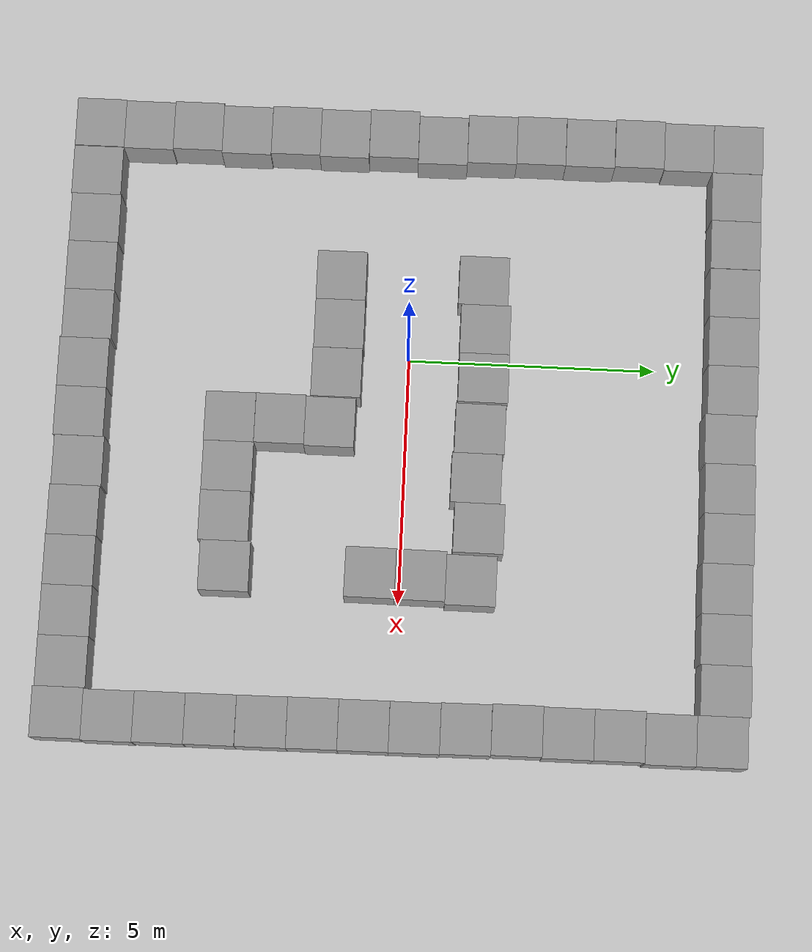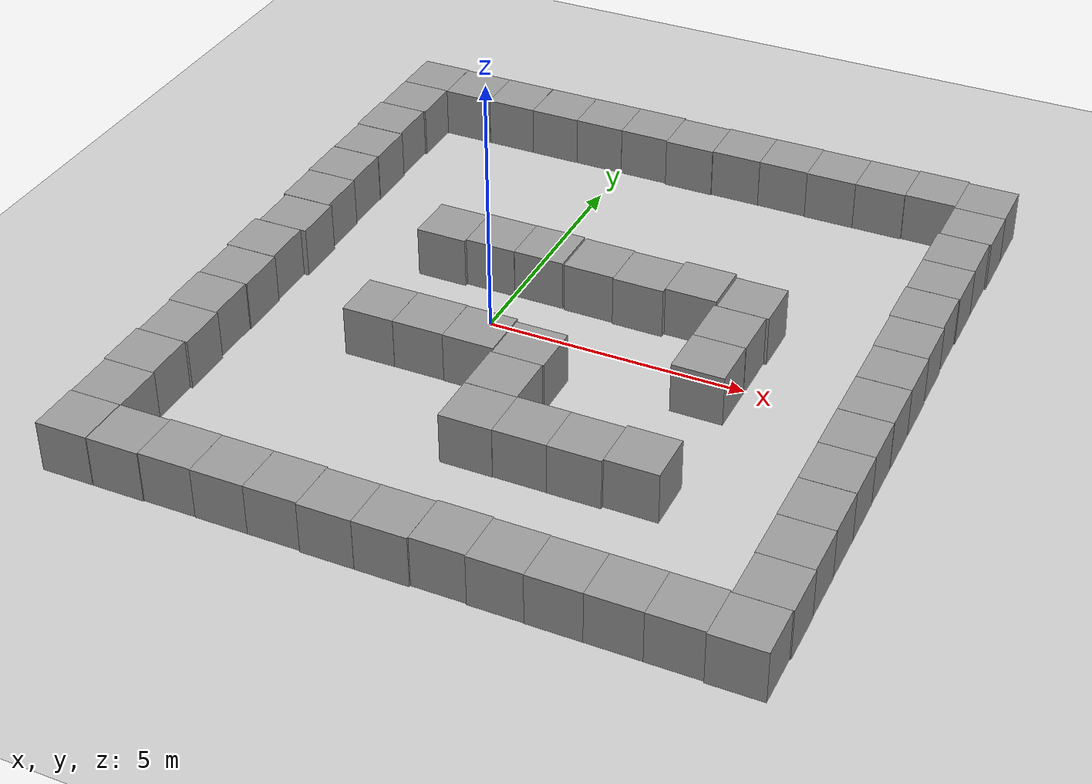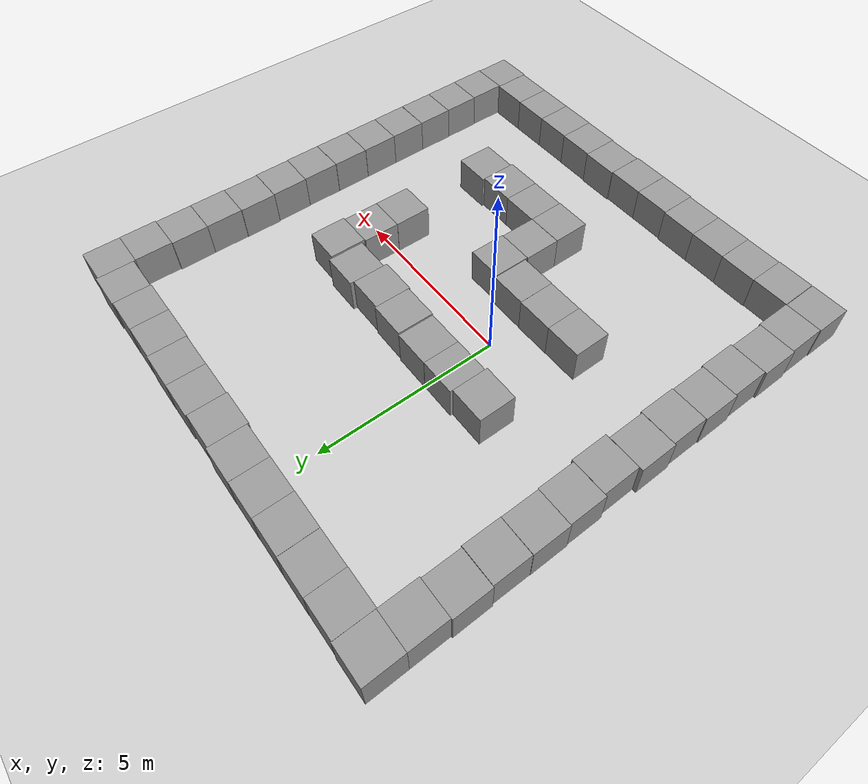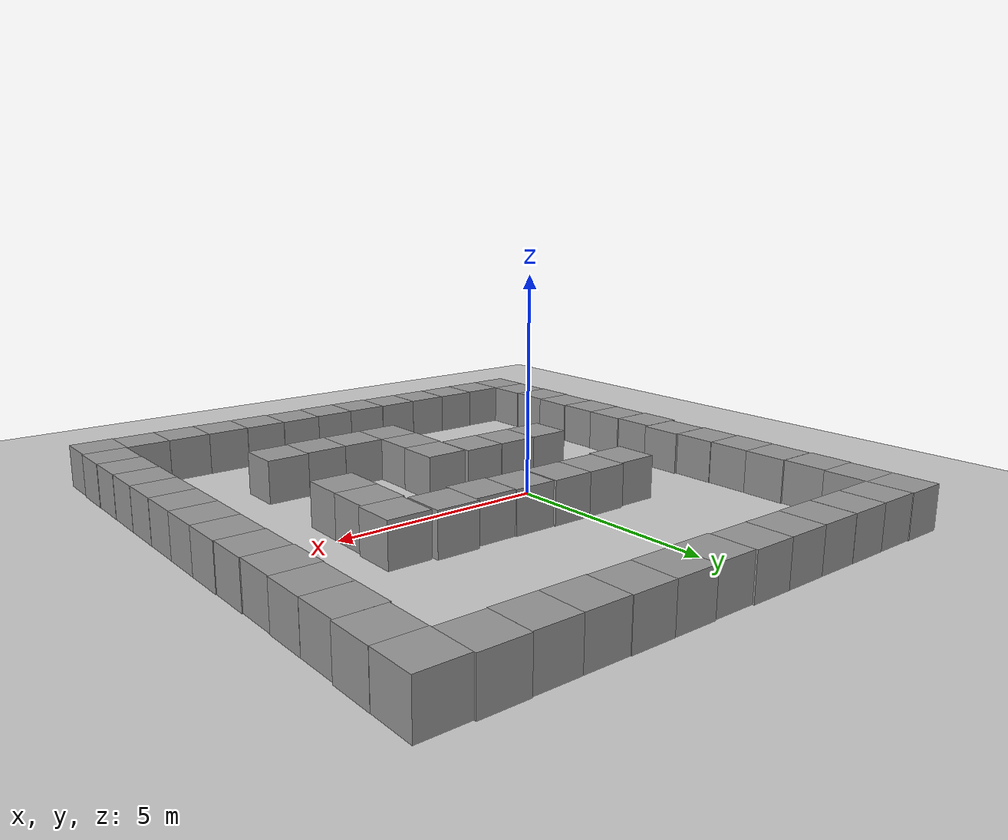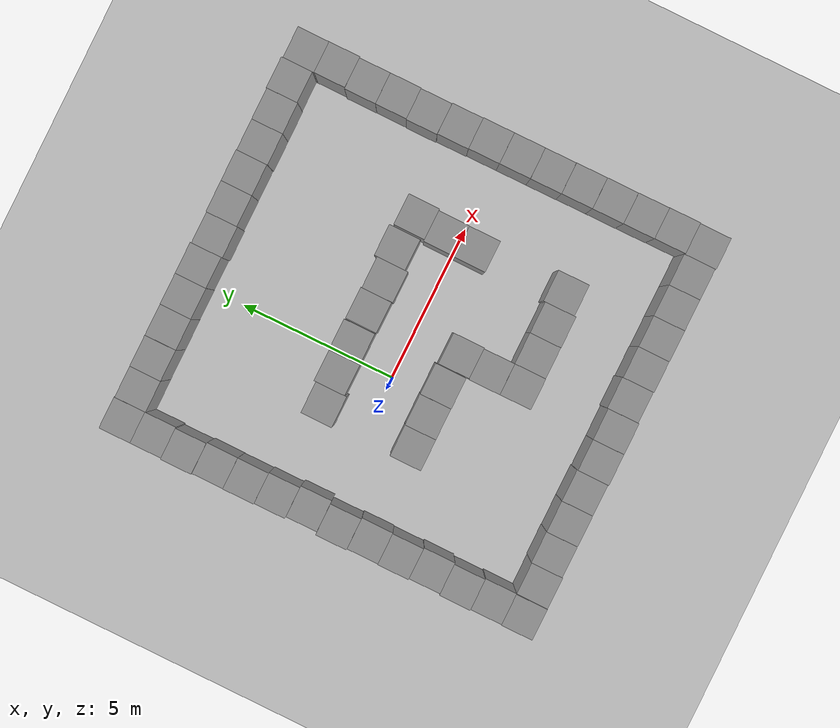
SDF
<sdf version="1.4">
 <world name="default">
  <light name="sun" type="directional">
   <pose>0 0 10 0 -0 0</pose>
   <diffuse>0.8 0.8 0.8 1</diffuse>
   <specular>0.2 0.2 0.2 1</specular>
   <attenuation>
    <range>1000</range>
    <constant>0.9</constant>
    <linear>0.01</linear>
    <quadratic>0.001</quadratic>
   </attenuation>
   <direction>-0.5 0.1 -0.9</direction>
  </light>
  <model name="ground_plane">
   <static>1</static>
   <link name="link">
    <collision name="collision">
     <geometry><plane><normal>0 0 1</normal><size>100 100</size></plane></geometry>
     <surface><friction><ode><mu>100</mu><mu2>50</mu2></ode></friction></surface>
    </collision>
    <visual name="visual">
     <cast_shadows>0</cast_shadows>
     <geometry><plane><normal>0 0 1</normal><size>100 100</size></plane></geometry>
     <material>
      <script><uri>file://media/materials/scripts/gazebo.material</uri><name>Gazebo/Grey</name></script>
     </material>
    </visual>
    <velocity_decay><linear>0</linear><angular>0</angular></velocity_decay>
   </link>
  </model>
  <physics type="ode">
   <max_step_size>0.001</max_step_size>
   <real_time_factor>1</real_time_factor>
   <real_time_update_rate>1000</real_time_update_rate>
   <gravity>0 0 -9.8</gravity>
  </physics>
  <scene><ambient>0.4 0.4 0.4 1</ambient><background>0.7 0.7 0.7 1</background><shadows>1</shadows></scene>
  <spherical_coordinates>
   <surface_model>EARTH_WGS84</surface_model>
   <latitude_deg>0</latitude_deg>
   <longitude_deg>0</longitude_deg>
   <elevation>0</elevation>
   <heading_deg>0</heading_deg>
  </spherical_coordinates>
  <model name="unit_box_1">
   <pose>-1.49547 -1.42861 0.5 0 -0 0.002879</pose>
   <link name="link">
    <inertial>
     <mass>1</mass>
     <inertia><ixx>1</ixx><ixy>0</ixy><ixz>0</ixz><iyy>1</iyy><iyz>0</iyz><izz>1</izz></inertia>
    </inertial>
    <collision name="collision"><geometry><box><size>1 1 1</size></box></geometry></collision>
    <visual name="visual">
     <geometry><box><size>1 1 1</size></box></geometry>
     <material>
      <script><uri>file://media/materials/scripts/gazebo.material</uri><name>Gazebo/Grey</name></script>
     </material>
    </visual>
    <velocity_decay><linear>0</linear><angular>0</angular></velocity_decay>
   </link>
   <static>0</static>
  </model>
  <model name="unit_box_2">
   <pose>4.50384 -3.45155 0.5 0 -0 0.000927</pose>
   <link name="link">
    <inertial>
     <mass>1</mass>
     <inertia><ixx>1</ixx><ixy>0</ixy><ixz>0</ixz><iyy>1</iyy><iyz>0</iyz><izz>1</izz></inertia>
    </inertial>
    <collision name="collision"><geometry><box><size>1 1 1</size></box></geometry></collision>
    <visual name="visual">
     <geometry><box><size>1 1 1</size></box></geometry>
     <material>
      <script><uri>file://media/materials/scripts/gazebo.material</uri><name>Gazebo/Grey</name></script>
     </material>
    </visual>
    <velocity_decay><linear>0</linear><angular>0</angular></velocity_decay>
   </link>
   <static>0</static>
  </model>
  <model name="unit_box_8">
   <pose>4.50905 -0.569607 0.5 0 0 -0.005112</pose>
   <link name="link">
    <inertial>
     <mass>1</mass>
     <inertia><ixx>1</ixx><ixy>0</ixy><ixz>0</ixz><iyy>1</iyy><iyz>0</iyz><izz>1</izz></inertia>
    </inertial>
    <collision name="collision"><geometry><box><size>1 1 1</size></box></geometry></collision>
    <visual name="visual">
     <geometry><box><size>1 1 1</size></box></geometry>
     <material>
      <script><uri>file://media/materials/scripts/gazebo.material</uri><name>Gazebo/Grey</name></script>
     </material>
    </visual>
    <velocity_decay><linear>0</linear><angular>0</angular></velocity_decay>
   </link>
   <static>0</static>
  </model>
  <model name="unit_box_9">
   <pose>0.505532 -1.43142 0.5 0 -0 0.001026</pose>
   <link name="link">
    <inertial>
     <mass>1</mass>
     <inertia><ixx>1</ixx><ixy>0</ixy><ixz>0</ixz><iyy>1</iyy><iyz>0</iyz><izz>1</izz></inertia>
    </inertial>
    <collision name="collision"><geometry><box><size>1 1 1</size></box></geometry></collision>
    <visual name="visual">
     <geometry><box><size>1 1 1</size></box></geometry>
     <material>
      <script><uri>file://media/materials/scripts/gazebo.material</uri><name>Gazebo/Grey</name></script>
     </material>
    </visual>
    <velocity_decay><linear>0</linear><angular>0</angular></velocity_decay>
   </link>
   <static>0</static>
  </model>
  <model name="unit_box_10">
   <pose>1.52602 -1.51466 0.5 0 -0 -0.002217</pose>
   <link name="link">
    <inertial>
     <mass>1</mass>
     <inertia><ixx>1</ixx><ixy>0</ixy><ixz>0</ixz><iyy>1</iyy><iyz>0</iyz><izz>1</izz></inertia>
    </inertial>
    <collision name="collision"><geometry><box><size>1 1 1</size></box></geometry></collision>
    <visual name="visual">
     <geometry><box><size>1 1 1</size></box></geometry>
     <material>
      <script><uri>file://media/materials/scripts/gazebo.material</uri><name>Gazebo/Grey</name></script>
     </material>
    </visual>
    <velocity_decay><linear>0</linear><angular>0</angular></velocity_decay>
   </link>
   <static>0</static>
  </model>
  <model name="unit_box_11">
   <pose>1.50027 -2.51465 0.5 0 -0 -0.002186</pose>
   <link name="link">
    <inertial>
     <mass>1</mass>
     <inertia><ixx>1</ixx><ixy>0</ixy><ixz>0</ixz><iyy>1</iyy><iyz>0</iyz><izz>1</izz></inertia>
    </inertial>
    <collision name="collision"><geometry><box><size>1 1 1</size></box></geometry></collision>
    <visual name="visual">
     <geometry><box><size>1 1 1</size></box></geometry>
     <material>
      <script><uri>file://media/materials/scripts/gazebo.material</uri><name>Gazebo/Grey</name></script>
     </material>
    </visual>
    <velocity_decay><linear>0</linear><angular>0</angular></velocity_decay>
   </link>
   <static>0</static>
  </model>
  <model name="unit_box_13">
   <pose>1.50345 -3.51592 0.5 0 -0 0.000332</pose>
   <link name="link">
    <inertial>
     <mass>1</mass>
     <inertia><ixx>1</ixx><ixy>0</ixy><ixz>0</ixz><iyy>1</iyy><iyz>0</iyz><izz>1</izz></inertia>
    </inertial>
    <collision name="collision"><geometry><box><size>1 1 1</size></box></geometry></collision>
    <visual name="visual">
     <geometry><box><size>1 1 1</size></box></geometry>
     <material>
      <script><uri>file://media/materials/scripts/gazebo.material</uri><name>Gazebo/Grey</name></script>
     </material>
    </visual>
    <velocity_decay><linear>0</linear><angular>0</angular></velocity_decay>
   </link>
   <static>0</static>
  </model>
  <model name="unit_box_14">
   <pose>1.52884 -6.51675 0.5 0 -0 -0.001245</pose>
   <link name="link">
    <inertial>
     <mass>1</mass>
     <inertia><ixx>1</ixx><ixy>0</ixy><ixz>0</ixz><iyy>1</iyy><iyz>0</iyz><izz>1</izz></inertia>
    </inertial>
    <collision name="collision"><geometry><box><size>1 1 1</size></box></geometry></collision>
    <visual name="visual">
     <geometry><box><size>1 1 1</size></box></geometry>
     <material>
      <script><uri>file://media/materials/scripts/gazebo.material</uri><name>Gazebo/Grey</name></script>
     </material>
    </visual>
    <velocity_decay><linear>0</linear><angular>0</angular></velocity_decay>
   </link>
   <static>0</static>
  </model>
  <model name="unit_box_15">
   <pose>0.52875 -6.51658 0.5 -0 -0 -0.001416</pose>
   <link name="link">
    <inertial>
     <mass>1</mass>
     <inertia><ixx>1</ixx><ixy>0</ixy><ixz>0</ixz><iyy>1</iyy><iyz>0</iyz><izz>1</izz></inertia>
    </inertial>
    <collision name="collision"><geometry><box><size>1 1 1</size></box></geometry></collision>
    <visual name="visual">
     <geometry><box><size>1 1 1</size></box></geometry>
     <material>
      <script><uri>file://media/materials/scripts/gazebo.material</uri><name>Gazebo/Grey</name></script>
     </material>
    </visual>
    <velocity_decay><linear>0</linear><angular>0</angular></velocity_decay>
   </link>
   <static>0</static>
  </model>
  <model name="unit_box_20">
   <pose>-1.50822 1.44739 0.5 0 0 -0.001923</pose>
   <link name="link">
    <inertial>
     <mass>1</mass>
     <inertia><ixx>1</ixx><ixy>0</ixy><ixz>0</ixz><iyy>1</iyy><iyz>0</iyz><izz>1</izz></inertia>
    </inertial>
    <collision name="collision"><geometry><box><size>1 1 1</size></box></geometry></collision>
    <visual name="visual">
     <geometry><box><size>1 1 1</size></box></geometry>
     <material>
      <script><uri>file://media/materials/scripts/gazebo.material</uri><name>Gazebo/Grey</name></script>
     </material>
    </visual>
    <velocity_decay><linear>0</linear><angular>0</angular></velocity_decay>
   </link>
   <static>0</static>
  </model>
  <model name="unit_box_21">
   <pose>-0.508097 1.51221 0.5 0 0 -0.001924</pose>
   <link name="link">
    <inertial>
     <mass>1</mass>
     <inertia><ixx>1</ixx><ixy>0</ixy><ixz>0</ixz><iyy>1</iyy><iyz>0</iyz><izz>1</izz></inertia>
    </inertial>
    <collision name="collision"><geometry><box><size>1 1 1</size></box></geometry></collision>
    <visual name="visual">
     <geometry><box><size>1 1 1</size></box></geometry>
     <material>
      <script><uri>file://media/materials/scripts/gazebo.material</uri><name>Gazebo/Grey</name></script>
     </material>
    </visual>
    <velocity_decay><linear>0</linear><angular>0</angular></velocity_decay>
   </link>
   <static>0</static>
  </model>
  <model name="unit_box_26">
   <pose>0.491916 1.51798 0.5 0 -0 -0.001924</pose>
   <link name="link">
    <inertial>
     <mass>1</mass>
     <inertia><ixx>1</ixx><ixy>0</ixy><ixz>0</ixz><iyy>1</iyy><iyz>0</iyz><izz>1</izz></inertia>
    </inertial>
    <collision name="collision"><geometry><box><size>1 1 1</size></box></geometry></collision>
    <visual name="visual">
     <geometry><box><size>1 1 1</size></box></geometry>
     <material>
      <script><uri>file://media/materials/scripts/gazebo.material</uri><name>Gazebo/Grey</name></script>
     </material>
    </visual>
    <velocity_decay><linear>0</linear><angular>0</angular></velocity_decay>
   </link>
   <static>0</static>
  </model>
  <model name="unit_box_27">
   <pose>4.52012 0.43037 0.5 0 -0 -0.005139</pose>
   <link name="link">
    <inertial>
     <mass>1</mass>
     <inertia><ixx>1</ixx><ixy>0</ixy><ixz>0</ixz><iyy>1</iyy><iyz>0</iyz><izz>1</izz></inertia>
    </inertial>
    <collision name="collision"><geometry><box><size>1 1 1</size></box></geometry></collision>
    <visual name="visual">
     <geometry><box><size>1 1 1</size></box></geometry>
     <material>
      <script><uri>file://media/materials/scripts/gazebo.material</uri><name>Gazebo/Grey</name></script>
     </material>
    </visual>
    <velocity_decay><linear>0</linear><angular>0</angular></velocity_decay>
   </link>
   <static>0</static>
  </model>
  <model name="unit_box_28">
   <pose>-0.495413 -1.42352 0.5 0 -0 0.00288</pose>
   <link name="link">
    <inertial>
     <mass>1</mass>
     <inertia><ixx>1</ixx><ixy>0</ixy><ixz>0</ixz><iyy>1</iyy><iyz>0</iyz><izz>1</izz></inertia>
    </inertial>
    <collision name="collision"><geometry><box><size>1 1 1</size></box></geometry></collision>
    <visual name="visual">
     <geometry><box><size>1 1 1</size></box></geometry>
     <material>
      <script><uri>file://media/materials/scripts/gazebo.material</uri><name>Gazebo/Grey</name></script>
     </material>
    </visual>
    <velocity_decay><linear>0</linear><angular>0</angular></velocity_decay>
   </link>
   <static>0</static>
  </model>
  <model name="unit_box_33">
   <pose>3.50368 -3.51063 0.5 0 -0 0.000775</pose>
   <link name="link">
    <inertial>
     <mass>1</mass>
     <inertia><ixx>1</ixx><ixy>0</ixy><ixz>0</ixz><iyy>1</iyy><iyz>0</iyz><izz>1</izz></inertia>
    </inertial>
    <collision name="collision"><geometry><box><size>1 1 1</size></box></geometry></collision>
    <visual name="visual">
     <geometry><box><size>1 1 1</size></box></geometry>
     <material>
      <script><uri>file://media/materials/scripts/gazebo.material</uri><name>Gazebo/Grey</name></script>
     </material>
    </visual>
    <velocity_decay><linear>0</linear><angular>0</angular></velocity_decay>
   </link>
   <static>0</static>
  </model>
  <model name="unit_box_34">
   <pose>2.50368 -3.50637 0.5 0 -0 0.000775</pose>
   <link name="link">
    <inertial>
     <mass>1</mass>
     <inertia><ixx>1</ixx><ixy>0</ixy><ixz>0</ixz><iyy>1</iyy><iyz>0</iyz><izz>1</izz></inertia>
    </inertial>
    <collision name="collision"><geometry><box><size>1 1 1</size></box></geometry></collision>
    <visual name="visual">
     <geometry><box><size>1 1 1</size></box></geometry>
     <material>
      <script><uri>file://media/materials/scripts/gazebo.material</uri><name>Gazebo/Grey</name></script>
     </material>
    </visual>
    <velocity_decay><linear>0</linear><angular>0</angular></velocity_decay>
   </link>
   <static>0</static>
  </model>
  <model name="unit_box_35">
   <pose>-1.48166 6.4982 0.5 0 -0 -0.001227</pose>
   <link name="link">
    <inertial>
     <mass>1</mass>
     <inertia><ixx>1</ixx><ixy>0</ixy><ixz>0</ixz><iyy>1</iyy><iyz>0</iyz><izz>1</izz></inertia>
    </inertial>
    <collision name="collision"><geometry><box><size>1 1 1</size></box></geometry></collision>
    <visual name="visual">
     <geometry><box><size>1 1 1</size></box></geometry>
     <material>
      <script><uri>file://media/materials/scripts/gazebo.material</uri><name>Gazebo/Grey</name></script>
     </material>
    </visual>
    <velocity_decay><linear>0</linear><angular>0</angular></velocity_decay>
   </link>
   <static>0</static>
  </model>
  <model name="unit_box_36">
   <pose>1.52905 1.48879 0.5 0 0 -0.005504</pose>
   <link name="link">
    <inertial>
     <mass>1</mass>
     <inertia><ixx>1</ixx><ixy>0</ixy><ixz>0</ixz><iyy>1</iyy><iyz>0</iyz><izz>1</izz></inertia>
    </inertial>
    <collision name="collision"><geometry><box><size>1 1 1</size></box></geometry></collision>
    <visual name="visual">
     <geometry><box><size>1 1 1</size></box></geometry>
     <material>
      <script><uri>file://media/materials/scripts/gazebo.material</uri><name>Gazebo/Grey</name></script>
     </material>
    </visual>
    <velocity_decay><linear>0</linear><angular>0</angular></velocity_decay>
   </link>
   <static>0</static>
  </model>
  <model name="unit_box_37">
   <pose>3.52981 1.54427 0.5 0 -0 -0.005434</pose>
   <link name="link">
    <inertial>
     <mass>1</mass>
     <inertia><ixx>1</ixx><ixy>0</ixy><ixz>0</ixz><iyy>1</iyy><iyz>0</iyz><izz>1</izz></inertia>
    </inertial>
    <collision name="collision"><geometry><box><size>1 1 1</size></box></geometry></collision>
    <visual name="visual">
     <geometry><box><size>1 1 1</size></box></geometry>
     <material>
      <script><uri>file://media/materials/scripts/gazebo.material</uri><name>Gazebo/Grey</name></script>
     </material>
    </visual>
    <velocity_decay><linear>0</linear><angular>0</angular></velocity_decay>
   </link>
   <static>0</static>
  </model>
  <model name="unit_box_39">
   <pose>4.57923 1.43026 0.5 0 0 -0.005394</pose>
   <link name="link">
    <inertial>
     <mass>1</mass>
     <inertia><ixx>1</ixx><ixy>0</ixy><ixz>0</ixz><iyy>1</iyy><iyz>0</iyz><izz>1</izz></inertia>
    </inertial>
    <collision name="collision"><geometry><box><size>1 1 1</size></box></geometry></collision>
    <visual name="visual">
     <geometry><box><size>1 1 1</size></box></geometry>
     <material>
      <script><uri>file://media/materials/scripts/gazebo.material</uri><name>Gazebo/Grey</name></script>
     </material>
    </visual>
    <velocity_decay><linear>0</linear><angular>0</angular></velocity_decay>
   </link>
   <static>0</static>
  </model>
  <model name="unit_box_43">
   <pose>2.52939 -6.48389 0.5 0 -0 -0.00035</pose>
   <link name="link">
    <inertial>
     <mass>1</mass>
     <inertia><ixx>1</ixx><ixy>0</ixy><ixz>0</ixz><iyy>1</iyy><iyz>0</iyz><izz>1</izz></inertia>
    </inertial>
    <collision name="collision"><geometry><box><size>1 1 1</size></box></geometry></collision>
    <visual name="visual">
     <geometry><box><size>1 1 1</size></box></geometry>
     <material>
      <script><uri>file://media/materials/scripts/gazebo.material</uri><name>Gazebo/Grey</name></script>
     </material>
    </visual>
    <velocity_decay><linear>0</linear><angular>0</angular></velocity_decay>
   </link>
   <static>0</static>
  </model>
  <model name="unit_box_44">
   <pose>3.52938 -6.50736 0.5 -0 -0 -0.00035</pose>
   <link name="link">
    <inertial>
     <mass>1</mass>
     <inertia><ixx>1</ixx><ixy>0</ixy><ixz>0</ixz><iyy>1</iyy><iyz>0</iyz><izz>1</izz></inertia>
    </inertial>
    <collision name="collision"><geometry><box><size>1 1 1</size></box></geometry></collision>
    <visual name="visual">
     <geometry><box><size>1 1 1</size></box></geometry>
     <material>
      <script><uri>file://media/materials/scripts/gazebo.material</uri><name>Gazebo/Grey</name></script>
     </material>
    </visual>
    <velocity_decay><linear>0</linear><angular>0</angular></velocity_decay>
   </link>
   <static>0</static>
  </model>
  <model name="unit_box_45">
   <pose>4.52938 -6.51678 0.5 -0 -0 -0.000351</pose>
   <link name="link">
    <inertial>
     <mass>1</mass>
     <inertia><ixx>1</ixx><ixy>0</ixy><ixz>0</ixz><iyy>1</iyy><iyz>0</iyz><izz>1</izz></inertia>
    </inertial>
    <collision name="collision"><geometry><box><size>1 1 1</size></box></geometry></collision>
    <visual name="visual">
     <geometry><box><size>1 1 1</size></box></geometry>
     <material>
      <script><uri>file://media/materials/scripts/gazebo.material</uri><name>Gazebo/Grey</name></script>
     </material>
    </visual>
    <velocity_decay><linear>0</linear><angular>0</angular></velocity_decay>
   </link>
   <static>0</static>
  </model>
  <model name="unit_box_46">
   <pose>5.52939 -6.51774 0.5 0 0 -0.000367</pose>
   <link name="link">
    <inertial>
     <mass>1</mass>
     <inertia><ixx>1</ixx><ixy>0</ixy><ixz>0</ixz><iyy>1</iyy><iyz>0</iyz><izz>1</izz></inertia>
    </inertial>
    <collision name="collision"><geometry><box><size>1 1 1</size></box></geometry></collision>
    <visual name="visual">
     <geometry><box><size>1 1 1</size></box></geometry>
     <material>
      <script><uri>file://media/materials/scripts/gazebo.material</uri><name>Gazebo/Grey</name></script>
     </material>
    </visual>
    <velocity_decay><linear>0</linear><angular>0</angular></velocity_decay>
   </link>
   <static>0</static>
  </model>
  <model name="unit_box_47">
   <pose>6.52939 -6.52193 0.5 0 0 -0.000367</pose>
   <link name="link">
    <inertial>
     <mass>1</mass>
     <inertia><ixx>1</ixx><ixy>0</ixy><ixz>0</ixz><iyy>1</iyy><iyz>0</iyz><izz>1</izz></inertia>
    </inertial>
    <collision name="collision"><geometry><box><size>1 1 1</size></box></geometry></collision>
    <visual name="visual">
     <geometry><box><size>1 1 1</size></box></geometry>
     <material>
      <script><uri>file://media/materials/scripts/gazebo.material</uri><name>Gazebo/Grey</name></script>
     </material>
    </visual>
    <velocity_decay><linear>0</linear><angular>0</angular></velocity_decay>
   </link>
   <static>0</static>
  </model>
  <model name="unit_box_48">
   <pose>7.52965 -6.55372 0.5 0 -0 0.000172</pose>
   <link name="link">
    <inertial>
     <mass>1</mass>
     <inertia><ixx>1</ixx><ixy>0</ixy><ixz>0</ixz><iyy>1</iyy><iyz>0</iyz><izz>1</izz></inertia>
    </inertial>
    <collision name="collision"><geometry><box><size>1 1 1</size></box></geometry></collision>
    <visual name="visual">
     <geometry><box><size>1 1 1</size></box></geometry>
     <material>
      <script><uri>file://media/materials/scripts/gazebo.material</uri><name>Gazebo/Grey</name></script>
     </material>
    </visual>
    <velocity_decay><linear>0</linear><angular>0</angular></velocity_decay>
   </link>
   <static>0</static>
  </model>
  <model name="unit_box_49">
   <pose>7.54973 -5.5537 0.5 0 -0 0.000183</pose>
   <link name="link">
    <inertial>
     <mass>1</mass>
     <inertia><ixx>1</ixx><ixy>0</ixy><ixz>0</ixz><iyy>1</iyy><iyz>0</iyz><izz>1</izz></inertia>
    </inertial>
    <collision name="collision"><geometry><box><size>1 1 1</size></box></geometry></collision>
    <visual name="visual">
     <geometry><box><size>1 1 1</size></box></geometry>
     <material>
      <script><uri>file://media/materials/scripts/gazebo.material</uri><name>Gazebo/Grey</name></script>
     </material>
    </visual>
    <velocity_decay><linear>0</linear><angular>0</angular></velocity_decay>
   </link>
   <static>0</static>
  </model>
  <model name="unit_box_50">
   <pose>7.54012 -4.55369 0.5 0 -0 0.0002</pose>
   <link name="link">
    <inertial>
     <mass>1</mass>
     <inertia><ixx>1</ixx><ixy>0</ixy><ixz>0</ixz><iyy>1</iyy><iyz>0</iyz><izz>1</izz></inertia>
    </inertial>
    <collision name="collision"><geometry><box><size>1 1 1</size></box></geometry></collision>
    <visual name="visual">
     <geometry><box><size>1 1 1</size></box></geometry>
     <material>
      <script><uri>file://media/materials/scripts/gazebo.material</uri><name>Gazebo/Grey</name></script>
     </material>
    </visual>
    <velocity_decay><linear>0</linear><angular>0</angular></velocity_decay>
   </link>
   <static>0</static>
  </model>
  <model name="unit_box_51">
   <pose>7.53426 -3.55346 0.5 0 -0 0.000669</pose>
   <link name="link">
    <inertial>
     <mass>1</mass>
     <inertia><ixx>1</ixx><ixy>0</ixy><ixz>0</ixz><iyy>1</iyy><iyz>0</iyz><izz>1</izz></inertia>
    </inertial>
    <collision name="collision"><geometry><box><size>1 1 1</size></box></geometry></collision>
    <visual name="visual">
     <geometry><box><size>1 1 1</size></box></geometry>
     <material>
      <script><uri>file://media/materials/scripts/gazebo.material</uri><name>Gazebo/Grey</name></script>
     </material>
    </visual>
    <velocity_decay><linear>0</linear><angular>0</angular></velocity_decay>
   </link>
   <static>0</static>
  </model>
  <model name="unit_box_52">
   <pose>7.5305 -2.55153 0.5 0 -0 0.004541</pose>
   <link name="link">
    <inertial>
     <mass>1</mass>
     <inertia><ixx>1</ixx><ixy>0</ixy><ixz>0</ixz><iyy>1</iyy><iyz>0</iyz><izz>1</izz></inertia>
    </inertial>
    <collision name="collision"><geometry><box><size>1 1 1</size></box></geometry></collision>
    <visual name="visual">
     <geometry><box><size>1 1 1</size></box></geometry>
     <material>
      <script><uri>file://media/materials/scripts/gazebo.material</uri><name>Gazebo/Grey</name></script>
     </material>
    </visual>
    <velocity_decay><linear>0</linear><angular>0</angular></velocity_decay>
   </link>
   <static>0</static>
  </model>
  <model name="unit_box_53">
   <pose>7.52178 -1.55116 0.5 0 -0 0.005171</pose>
   <link name="link">
    <inertial>
     <mass>1</mass>
     <inertia><ixx>1</ixx><ixy>0</ixy><ixz>0</ixz><iyy>1</iyy><iyz>0</iyz><izz>1</izz></inertia>
    </inertial>
    <collision name="collision"><geometry><box><size>1 1 1</size></box></geometry></collision>
    <visual name="visual">
     <geometry><box><size>1 1 1</size></box></geometry>
     <material>
      <script><uri>file://media/materials/scripts/gazebo.material</uri><name>Gazebo/Grey</name></script>
     </material>
    </visual>
    <velocity_decay><linear>0</linear><angular>0</angular></velocity_decay>
   </link>
   <static>0</static>
  </model>
  <model name="unit_box_54">
   <pose>7.51956 -0.550623 0.5 0 -0 0.004086</pose>
   <link name="link">
    <inertial>
     <mass>1</mass>
     <inertia><ixx>1</ixx><ixy>0</ixy><ixz>0</ixz><iyy>1</iyy><iyz>0</iyz><izz>1</izz></inertia>
    </inertial>
    <collision name="collision"><geometry><box><size>1 1 1</size></box></geometry></collision>
    <visual name="visual">
     <geometry><box><size>1 1 1</size></box></geometry>
     <material>
      <script><uri>file://media/materials/scripts/gazebo.material</uri><name>Gazebo/Grey</name></script>
     </material>
    </visual>
    <velocity_decay><linear>0</linear><angular>0</angular></velocity_decay>
   </link>
   <static>0</static>
  </model>
  <model name="unit_box_55">
   <pose>-0.471488 -6.48829 0.5 -0 -0 -0.000862</pose>
   <link name="link">
    <inertial>
     <mass>1</mass>
     <inertia><ixx>1</ixx><ixy>0</ixy><ixz>0</ixz><iyy>1</iyy><iyz>0</iyz><izz>1</izz></inertia>
    </inertial>
    <collision name="collision"><geometry><box><size>1 1 1</size></box></geometry></collision>
    <visual name="visual">
     <geometry><box><size>1 1 1</size></box></geometry>
     <material>
      <script><uri>file://media/materials/scripts/gazebo.material</uri><name>Gazebo/Grey</name></script>
     </material>
    </visual>
    <velocity_decay><linear>0</linear><angular>0</angular></velocity_decay>
   </link>
   <static>0</static>
  </model>
  <model name="unit_box_56">
   <pose>-1.47172 -6.48733 0.5 0 0 -0.0004</pose>
   <link name="link">
    <inertial>
     <mass>1</mass>
     <inertia><ixx>1</ixx><ixy>0</ixy><ixz>0</ixz><iyy>1</iyy><iyz>0</iyz><izz>1</izz></inertia>
    </inertial>
    <collision name="collision"><geometry><box><size>1 1 1</size></box></geometry></collision>
    <visual name="visual">
     <geometry><box><size>1 1 1</size></box></geometry>
     <material>
      <script><uri>file://media/materials/scripts/gazebo.material</uri><name>Gazebo/Grey</name></script>
     </material>
    </visual>
    <velocity_decay><linear>0</linear><angular>0</angular></velocity_decay>
   </link>
   <static>0</static>
  </model>
  <model name="unit_box_57">
   <pose>-2.47195 -6.48022 0.5 0 -0 5.3e-05</pose>
   <link name="link">
    <inertial>
     <mass>1</mass>
     <inertia><ixx>1</ixx><ixy>0</ixy><ixz>0</ixz><iyy>1</iyy><iyz>0</iyz><izz>1</izz></inertia>
    </inertial>
    <collision name="collision"><geometry><box><size>1 1 1</size></box></geometry></collision>
    <visual name="visual">
     <geometry><box><size>1 1 1</size></box></geometry>
     <material>
      <script><uri>file://media/materials/scripts/gazebo.material</uri><name>Gazebo/Grey</name></script>
     </material>
    </visual>
    <velocity_decay><linear>0</linear><angular>0</angular></velocity_decay>
   </link>
   <static>0</static>
  </model>
  <model name="unit_box_58">
   <pose>-3.47202 -6.49911 0.5 0 -0 0.000208</pose>
   <link name="link">
    <inertial>
     <mass>1</mass>
     <inertia><ixx>1</ixx><ixy>0</ixy><ixz>0</ixz><iyy>1</iyy><iyz>0</iyz><izz>1</izz></inertia>
    </inertial>
    <collision name="collision"><geometry><box><size>1 1 1</size></box></geometry></collision>
    <visual name="visual">
     <geometry><box><size>1 1 1</size></box></geometry>
     <material>
      <script><uri>file://media/materials/scripts/gazebo.material</uri><name>Gazebo/Grey</name></script>
     </material>
    </visual>
    <velocity_decay><linear>0</linear><angular>0</angular></velocity_decay>
   </link>
   <static>0</static>
  </model>
  <model name="unit_box_59">
   <pose>-4.48366 -6.49957 0.5 0 -0 0.000635</pose>
   <link name="link">
    <inertial>
     <mass>1</mass>
     <inertia><ixx>1</ixx><ixy>0</ixy><ixz>0</ixz><iyy>1</iyy><iyz>0</iyz><izz>1</izz></inertia>
    </inertial>
    <collision name="collision"><geometry><box><size>1 1 1</size></box></geometry></collision>
    <visual name="visual">
     <geometry><box><size>1 1 1</size></box></geometry>
     <material>
      <script><uri>file://media/materials/scripts/gazebo.material</uri><name>Gazebo/Grey</name></script>
     </material>
    </visual>
    <velocity_decay><linear>0</linear><angular>0</angular></velocity_decay>
   </link>
   <static>0</static>
  </model>
  <model name="unit_box_60">
   <pose>-4.46741 -5.49954 0.5 0 -0 0.000672</pose>
   <link name="link">
    <inertial>
     <mass>1</mass>
     <inertia><ixx>1</ixx><ixy>0</ixy><ixz>0</ixz><iyy>1</iyy><iyz>0</iyz><izz>1</izz></inertia>
    </inertial>
    <collision name="collision"><geometry><box><size>1 1 1</size></box></geometry></collision>
    <visual name="visual">
     <geometry><box><size>1 1 1</size></box></geometry>
     <material>
      <script><uri>file://media/materials/scripts/gazebo.material</uri><name>Gazebo/Grey</name></script>
     </material>
    </visual>
    <velocity_decay><linear>0</linear><angular>0</angular></velocity_decay>
   </link>
   <static>0</static>
  </model>
  <model name="unit_box_61">
   <pose>-4.49676 -4.49949 0.5 0 -0 0.000805</pose>
   <link name="link">
    <inertial>
     <mass>1</mass>
     <inertia><ixx>1</ixx><ixy>0</ixy><ixz>0</ixz><iyy>1</iyy><iyz>0</iyz><izz>1</izz></inertia>
    </inertial>
    <collision name="collision"><geometry><box><size>1 1 1</size></box></geometry></collision>
    <visual name="visual">
     <geometry><box><size>1 1 1</size></box></geometry>
     <material>
      <script><uri>file://media/materials/scripts/gazebo.material</uri><name>Gazebo/Grey</name></script>
     </material>
    </visual>
    <velocity_decay><linear>0</linear><angular>0</angular></velocity_decay>
   </link>
   <static>0</static>
  </model>
  <model name="unit_box_62">
   <pose>-4.45118 -3.49941 0.5 0 -0 0.000898</pose>
   <link name="link">
    <inertial>
     <mass>1</mass>
     <inertia><ixx>1</ixx><ixy>0</ixy><ixz>0</ixz><iyy>1</iyy><iyz>0</iyz><izz>1</izz></inertia>
    </inertial>
    <collision name="collision"><geometry><box><size>1 1 1</size></box></geometry></collision>
    <visual name="visual">
     <geometry><box><size>1 1 1</size></box></geometry>
     <material>
      <script><uri>file://media/materials/scripts/gazebo.material</uri><name>Gazebo/Grey</name></script>
     </material>
    </visual>
    <velocity_decay><linear>0</linear><angular>0</angular></velocity_decay>
   </link>
   <static>0</static>
  </model>
  <model name="unit_box_63">
   <pose>-4.48656 -2.49942 0.5 0 -0 0.000892</pose>
   <link name="link">
    <inertial>
     <mass>1</mass>
     <inertia><ixx>1</ixx><ixy>0</ixy><ixz>0</ixz><iyy>1</iyy><iyz>0</iyz><izz>1</izz></inertia>
    </inertial>
    <collision name="collision"><geometry><box><size>1 1 1</size></box></geometry></collision>
    <visual name="visual">
     <geometry><box><size>1 1 1</size></box></geometry>
     <material>
      <script><uri>file://media/materials/scripts/gazebo.material</uri><name>Gazebo/Grey</name></script>
     </material>
    </visual>
    <velocity_decay><linear>0</linear><angular>0</angular></velocity_decay>
   </link>
   <static>0</static>
  </model>
  <model name="unit_box_64">
   <pose>-4.46703 -1.49939 0.5 0 -0 0.000885</pose>
   <link name="link">
    <inertial>
     <mass>1</mass>
     <inertia><ixx>1</ixx><ixy>0</ixy><ixz>0</ixz><iyy>1</iyy><iyz>0</iyz><izz>1</izz></inertia>
    </inertial>
    <collision name="collision"><geometry><box><size>1 1 1</size></box></geometry></collision>
    <visual name="visual">
     <geometry><box><size>1 1 1</size></box></geometry>
     <material>
      <script><uri>file://media/materials/scripts/gazebo.material</uri><name>Gazebo/Grey</name></script>
     </material>
    </visual>
    <velocity_decay><linear>0</linear><angular>0</angular></velocity_decay>
   </link>
   <static>0</static>
  </model>
  <model name="unit_box_65">
   <pose>-4.50684 -0.49758 0.5 0 -0 0.004878</pose>
   <link name="link">
    <inertial>
     <mass>1</mass>
     <inertia><ixx>1</ixx><ixy>0</ixy><ixz>0</ixz><iyy>1</iyy><iyz>0</iyz><izz>1</izz></inertia>
    </inertial>
    <collision name="collision"><geometry><box><size>1 1 1</size></box></geometry></collision>
    <visual name="visual">
     <geometry><box><size>1 1 1</size></box></geometry>
     <material>
      <script><uri>file://media/materials/scripts/gazebo.material</uri><name>Gazebo/Grey</name></script>
     </material>
    </visual>
    <velocity_decay><linear>0</linear><angular>0</angular></velocity_decay>
   </link>
   <static>0</static>
  </model>
  <model name="unit_box_66">
   <pose>-4.41102 0.504431 0.5 0 -0 0.006044</pose>
   <link name="link">
    <inertial>
     <mass>1</mass>
     <inertia><ixx>1</ixx><ixy>0</ixy><ixz>0</ixz><iyy>1</iyy><iyz>0</iyz><izz>1</izz></inertia>
    </inertial>
    <collision name="collision"><geometry><box><size>1 1 1</size></box></geometry></collision>
    <visual name="visual">
     <geometry><box><size>1 1 1</size></box></geometry>
     <material>
      <script><uri>file://media/materials/scripts/gazebo.material</uri><name>Gazebo/Grey</name></script>
     </material>
    </visual>
    <velocity_decay><linear>0</linear><angular>0</angular></velocity_decay>
   </link>
   <static>0</static>
  </model>
  <model name="unit_box_67">
   <pose>-4.47502 1.50602 0.5 0 -0 0.002152</pose>
   <link name="link">
    <inertial>
     <mass>1</mass>
     <inertia><ixx>1</ixx><ixy>0</ixy><ixz>0</ixz><iyy>1</iyy><iyz>0</iyz><izz>1</izz></inertia>
    </inertial>
    <collision name="collision"><geometry><box><size>1 1 1</size></box></geometry></collision>
    <visual name="visual">
     <geometry><box><size>1 1 1</size></box></geometry>
     <material>
      <script><uri>file://media/materials/scripts/gazebo.material</uri><name>Gazebo/Grey</name></script>
     </material>
    </visual>
    <velocity_decay><linear>0</linear><angular>0</angular></velocity_decay>
   </link>
   <static>0</static>
  </model>
  <model name="unit_box_68">
   <pose>-4.49633 2.5063 0.5 0 -0 0.001538</pose>
   <link name="link">
    <inertial>
     <mass>1</mass>
     <inertia><ixx>1</ixx><ixy>0</ixy><ixz>0</ixz><iyy>1</iyy><iyz>0</iyz><izz>1</izz></inertia>
    </inertial>
    <collision name="collision"><geometry><box><size>1 1 1</size></box></geometry></collision>
    <visual name="visual">
     <geometry><box><size>1 1 1</size></box></geometry>
     <material>
      <script><uri>file://media/materials/scripts/gazebo.material</uri><name>Gazebo/Grey</name></script>
     </material>
    </visual>
    <velocity_decay><linear>0</linear><angular>0</angular></velocity_decay>
   </link>
   <static>0</static>
  </model>
  <model name="unit_box_69">
   <pose>-4.48876 3.50822 0.5 0 0 -0.002343</pose>
   <link name="link">
    <inertial>
     <mass>1</mass>
     <inertia><ixx>1</ixx><ixy>0</ixy><ixz>0</ixz><iyy>1</iyy><iyz>0</iyz><izz>1</izz></inertia>
    </inertial>
    <collision name="collision"><geometry><box><size>1 1 1</size></box></geometry></collision>
    <visual name="visual">
     <geometry><box><size>1 1 1</size></box></geometry>
     <material>
      <script><uri>file://media/materials/scripts/gazebo.material</uri><name>Gazebo/Grey</name></script>
     </material>
    </visual>
    <velocity_decay><linear>0</linear><angular>0</angular></velocity_decay>
   </link>
   <static>0</static>
  </model>
  <model name="unit_box_70">
   <pose>-4.52021 4.51315 0.5 0 -0 0.001164</pose>
   <link name="link">
    <inertial>
     <mass>1</mass>
     <inertia><ixx>1</ixx><ixy>0</ixy><ixz>0</ixz><iyy>1</iyy><iyz>0</iyz><izz>1</izz></inertia>
    </inertial>
    <collision name="collision"><geometry><box><size>1 1 1</size></box></geometry></collision>
    <visual name="visual">
     <geometry><box><size>1 1 1</size></box></geometry>
     <material>
      <script><uri>file://media/materials/scripts/gazebo.material</uri><name>Gazebo/Grey</name></script>
     </material>
    </visual>
    <velocity_decay><linear>0</linear><angular>0</angular></velocity_decay>
   </link>
   <static>0</static>
  </model>
  <model name="unit_box_71">
   <pose>-4.48521 5.51325 0.5 0 -0 0.001231</pose>
   <link name="link">
    <inertial>
     <mass>1</mass>
     <inertia><ixx>1</ixx><ixy>0</ixy><ixz>0</ixz><iyy>1</iyy><iyz>0</iyz><izz>1</izz></inertia>
    </inertial>
    <collision name="collision"><geometry><box><size>1 1 1</size></box></geometry></collision>
    <visual name="visual">
     <geometry><box><size>1 1 1</size></box></geometry>
     <material>
      <script><uri>file://media/materials/scripts/gazebo.material</uri><name>Gazebo/Grey</name></script>
     </material>
    </visual>
    <velocity_decay><linear>0</linear><angular>0</angular></velocity_decay>
   </link>
   <static>0</static>
  </model>
  <model name="unit_box_72">
   <pose>-4.48655 6.51333 0.5 0 -0 0.001313</pose>
   <link name="link">
    <inertial>
     <mass>1</mass>
     <inertia><ixx>1</ixx><ixy>0</ixy><ixz>0</ixz><iyy>1</iyy><iyz>0</iyz><izz>1</izz></inertia>
    </inertial>
    <collision name="collision"><geometry><box><size>1 1 1</size></box></geometry></collision>
    <visual name="visual">
     <geometry><box><size>1 1 1</size></box></geometry>
     <material>
      <script><uri>file://media/materials/scripts/gazebo.material</uri><name>Gazebo/Grey</name></script>
     </material>
    </visual>
    <velocity_decay><linear>0</linear><angular>0</angular></velocity_decay>
   </link>
   <static>0</static>
  </model>
  <model name="unit_box_73">
   <pose>-3.4852 6.49521 0.5 0 -0 0.00011</pose>
   <link name="link">
    <inertial>
     <mass>1</mass>
     <inertia><ixx>1</ixx><ixy>0</ixy><ixz>0</ixz><iyy>1</iyy><iyz>0</iyz><izz>1</izz></inertia>
    </inertial>
    <collision name="collision"><geometry><box><size>1 1 1</size></box></geometry></collision>
    <visual name="visual">
     <geometry><box><size>1 1 1</size></box></geometry>
     <material>
      <script><uri>file://media/materials/scripts/gazebo.material</uri><name>Gazebo/Grey</name></script>
     </material>
    </visual>
    <velocity_decay><linear>0</linear><angular>0</angular></velocity_decay>
   </link>
   <static>0</static>
  </model>
  <model name="unit_box_74">
   <pose>-2.48507 6.49995 0.5 0 -0 0.000269</pose>
   <link name="link">
    <inertial>
     <mass>1</mass>
     <inertia><ixx>1</ixx><ixy>0</ixy><ixz>0</ixz><iyy>1</iyy><iyz>0</iyz><izz>1</izz></inertia>
    </inertial>
    <collision name="collision"><geometry><box><size>1 1 1</size></box></geometry></collision>
    <visual name="visual">
     <geometry><box><size>1 1 1</size></box></geometry>
     <material>
      <script><uri>file://media/materials/scripts/gazebo.material</uri><name>Gazebo/Grey</name></script>
     </material>
    </visual>
    <velocity_decay><linear>0</linear><angular>0</angular></velocity_decay>
   </link>
   <static>0</static>
  </model>
  <model name="unit_box_75">
   <pose>2.52928 1.45068 0.5 0 0 -0.005434</pose>
   <link name="link">
    <inertial>
     <mass>1</mass>
     <inertia><ixx>1</ixx><ixy>0</ixy><ixz>0</ixz><iyy>1</iyy><iyz>0</iyz><izz>1</izz></inertia>
    </inertial>
    <collision name="collision"><geometry><box><size>1 1 1</size></box></geometry></collision>
    <visual name="visual">
     <geometry><box><size>1 1 1</size></box></geometry>
     <material>
      <script><uri>file://media/materials/scripts/gazebo.material</uri><name>Gazebo/Grey</name></script>
     </material>
    </visual>
    <velocity_decay><linear>0</linear><angular>0</angular></velocity_decay>
   </link>
   <static>0</static>
  </model>
  <model name="unit_box_76">
   <pose>-0.481557 6.50236 0.5 0 -0 -0.001259</pose>
   <link name="link">
    <inertial>
     <mass>1</mass>
     <inertia><ixx>1</ixx><ixy>0</ixy><ixz>0</ixz><iyy>1</iyy><iyz>0</iyz><izz>1</izz></inertia>
    </inertial>
    <collision name="collision"><geometry><box><size>1 1 1</size></box></geometry></collision>
    <visual name="visual">
     <geometry><box><size>1 1 1</size></box></geometry>
     <material>
      <script><uri>file://media/materials/scripts/gazebo.material</uri><name>Gazebo/Grey</name></script>
     </material>
    </visual>
    <velocity_decay><linear>0</linear><angular>0</angular></velocity_decay>
   </link>
   <static>0</static>
  </model>
  <model name="unit_box_77">
   <pose>0.518563 6.50445 0.5 0 0 -0.001254</pose>
   <link name="link">
    <inertial>
     <mass>1</mass>
     <inertia><ixx>1</ixx><ixy>0</ixy><ixz>0</ixz><iyy>1</iyy><iyz>0</iyz><izz>1</izz></inertia>
    </inertial>
    <collision name="collision"><geometry><box><size>1 1 1</size></box></geometry></collision>
    <visual name="visual">
     <geometry><box><size>1 1 1</size></box></geometry>
     <material>
      <script><uri>file://media/materials/scripts/gazebo.material</uri><name>Gazebo/Grey</name></script>
     </material>
    </visual>
    <velocity_decay><linear>0</linear><angular>0</angular></velocity_decay>
   </link>
   <static>0</static>
  </model>
  <model name="unit_box_78">
   <pose>1.51856 6.46711 0.5 0 0 -0.00118</pose>
   <link name="link">
    <inertial>
     <mass>1</mass>
     <inertia><ixx>1</ixx><ixy>0</ixy><ixz>0</ixz><iyy>1</iyy><iyz>0</iyz><izz>1</izz></inertia>
    </inertial>
    <collision name="collision"><geometry><box><size>1 1 1</size></box></geometry></collision>
    <visual name="visual">
     <geometry><box><size>1 1 1</size></box></geometry>
     <material>
      <script><uri>file://media/materials/scripts/gazebo.material</uri><name>Gazebo/Grey</name></script>
     </material>
    </visual>
    <velocity_decay><linear>0</linear><angular>0</angular></velocity_decay>
   </link>
   <static>0</static>
  </model>
  <model name="unit_box_79">
   <pose>2.51862 6.49016 0.5 0 0 -0.001165</pose>
   <link name="link">
    <inertial>
     <mass>1</mass>
     <inertia><ixx>1</ixx><ixy>0</ixy><ixz>0</ixz><iyy>1</iyy><iyz>0</iyz><izz>1</izz></inertia>
    </inertial>
    <collision name="collision"><geometry><box><size>1 1 1</size></box></geometry></collision>
    <visual name="visual">
     <geometry><box><size>1 1 1</size></box></geometry>
     <material>
      <script><uri>file://media/materials/scripts/gazebo.material</uri><name>Gazebo/Grey</name></script>
     </material>
    </visual>
    <velocity_decay><linear>0</linear><angular>0</angular></velocity_decay>
   </link>
   <static>0</static>
  </model>
  <model name="unit_box_80">
   <pose>3.51864 6.49279 0.5 0 0 -0.00115</pose>
   <link name="link">
    <inertial>
     <mass>1</mass>
     <inertia><ixx>1</ixx><ixy>0</ixy><ixz>0</ixz><iyy>1</iyy><iyz>0</iyz><izz>1</izz></inertia>
    </inertial>
    <collision name="collision"><geometry><box><size>1 1 1</size></box></geometry></collision>
    <visual name="visual">
     <geometry><box><size>1 1 1</size></box></geometry>
     <material>
      <script><uri>file://media/materials/scripts/gazebo.material</uri><name>Gazebo/Grey</name></script>
     </material>
    </visual>
    <velocity_decay><linear>0</linear><angular>0</angular></velocity_decay>
   </link>
   <static>0</static>
  </model>
  <model name="unit_box_81">
   <pose>4.51865 6.47674 0.5 -0 -0 -0.001084</pose>
   <link name="link">
    <inertial>
     <mass>1</mass>
     <inertia><ixx>1</ixx><ixy>0</ixy><ixz>0</ixz><iyy>1</iyy><iyz>0</iyz><izz>1</izz></inertia>
    </inertial>
    <collision name="collision"><geometry><box><size>1 1 1</size></box></geometry></collision>
    <visual name="visual">
     <geometry><box><size>1 1 1</size></box></geometry>
     <material>
      <script><uri>file://media/materials/scripts/gazebo.material</uri><name>Gazebo/Grey</name></script>
     </material>
    </visual>
    <velocity_decay><linear>0</linear><angular>0</angular></velocity_decay>
   </link>
   <static>0</static>
  </model>
  <model name="unit_box_82">
   <pose>5.51866 6.47915 0.5 0 -0 -0.001078</pose>
   <link name="link">
    <inertial>
     <mass>1</mass>
     <inertia><ixx>1</ixx><ixy>0</ixy><ixz>0</ixz><iyy>1</iyy><iyz>0</iyz><izz>1</izz></inertia>
    </inertial>
    <collision name="collision"><geometry><box><size>1 1 1</size></box></geometry></collision>
    <visual name="visual">
     <geometry><box><size>1 1 1</size></box></geometry>
     <material>
      <script><uri>file://media/materials/scripts/gazebo.material</uri><name>Gazebo/Grey</name></script>
     </material>
    </visual>
    <velocity_decay><linear>0</linear><angular>0</angular></velocity_decay>
   </link>
   <static>0</static>
  </model>
  <model name="unit_box_83">
   <pose>6.51874 6.49978 0.5 -0 -0 -0.000968</pose>
   <link name="link">
    <inertial>
     <mass>1</mass>
     <inertia><ixx>1</ixx><ixy>0</ixy><ixz>0</ixz><iyy>1</iyy><iyz>0</iyz><izz>1</izz></inertia>
    </inertial>
    <collision name="collision"><geometry><box><size>1 1 1</size></box></geometry></collision>
    <visual name="visual">
     <geometry><box><size>1 1 1</size></box></geometry>
     <material>
      <script><uri>file://media/materials/scripts/gazebo.material</uri><name>Gazebo/Grey</name></script>
     </material>
    </visual>
    <velocity_decay><linear>0</linear><angular>0</angular></velocity_decay>
   </link>
   <static>0</static>
  </model>
  <model name="unit_box_84">
   <pose>7.51611 0.44982 0.5 0 -0 0.003197</pose>
   <link name="link">
    <inertial>
     <mass>1</mass>
     <inertia><ixx>1</ixx><ixy>0</ixy><ixz>0</ixz><iyy>1</iyy><iyz>0</iyz><izz>1</izz></inertia>
    </inertial>
    <collision name="collision"><geometry><box><size>1 1 1</size></box></geometry></collision>
    <visual name="visual">
     <geometry><box><size>1 1 1</size></box></geometry>
     <material>
      <script><uri>file://media/materials/scripts/gazebo.material</uri><name>Gazebo/Grey</name></script>
     </material>
    </visual>
    <velocity_decay><linear>0</linear><angular>0</angular></velocity_decay>
   </link>
   <static>0</static>
  </model>
  <model name="unit_box_85">
   <pose>7.49913 1.44998 0.5 0 -0 0.002783</pose>
   <link name="link">
    <inertial>
     <mass>1</mass>
     <inertia><ixx>1</ixx><ixy>0</ixy><ixz>0</ixz><iyy>1</iyy><iyz>0</iyz><izz>1</izz></inertia>
    </inertial>
    <collision name="collision"><geometry><box><size>1 1 1</size></box></geometry></collision>
    <visual name="visual">
     <geometry><box><size>1 1 1</size></box></geometry>
     <material>
      <script><uri>file://media/materials/scripts/gazebo.material</uri><name>Gazebo/Grey</name></script>
     </material>
    </visual>
    <velocity_decay><linear>0</linear><angular>0</angular></velocity_decay>
   </link>
   <static>0</static>
  </model>
  <model name="unit_box_86">
   <pose>7.47724 2.45085 0.5 0 -0 0.000968</pose>
   <link name="link">
    <inertial>
     <mass>1</mass>
     <inertia><ixx>1</ixx><ixy>0</ixy><ixz>0</ixz><iyy>1</iyy><iyz>0</iyz><izz>1</izz></inertia>
    </inertial>
    <collision name="collision"><geometry><box><size>1 1 1</size></box></geometry></collision>
    <visual name="visual">
     <geometry><box><size>1 1 1</size></box></geometry>
     <material>
      <script><uri>file://media/materials/scripts/gazebo.material</uri><name>Gazebo/Grey</name></script>
     </material>
    </visual>
    <velocity_decay><linear>0</linear><angular>0</angular></velocity_decay>
   </link>
   <static>0</static>
  </model>
  <model name="unit_box_87">
   <pose>7.49246 3.4511 0.5 0 -0 0.000507</pose>
   <link name="link">
    <inertial>
     <mass>1</mass>
     <inertia><ixx>1</ixx><ixy>0</ixy><ixz>0</ixz><iyy>1</iyy><iyz>0</iyz><izz>1</izz></inertia>
    </inertial>
    <collision name="collision"><geometry><box><size>1 1 1</size></box></geometry></collision>
    <visual name="visual">
     <geometry><box><size>1 1 1</size></box></geometry>
     <material>
      <script><uri>file://media/materials/scripts/gazebo.material</uri><name>Gazebo/Grey</name></script>
     </material>
    </visual>
    <velocity_decay><linear>0</linear><angular>0</angular></velocity_decay>
   </link>
   <static>0</static>
  </model>
  <model name="unit_box_88">
   <pose>7.48931 4.4512 0.5 0 -0 0.000306</pose>
   <link name="link">
    <inertial>
     <mass>1</mass>
     <inertia><ixx>1</ixx><ixy>0</ixy><ixz>0</ixz><iyy>1</iyy><iyz>0</iyz><izz>1</izz></inertia>
    </inertial>
    <collision name="collision"><geometry><box><size>1 1 1</size></box></geometry></collision>
    <visual name="visual">
     <geometry><box><size>1 1 1</size></box></geometry>
     <material>
      <script><uri>file://media/materials/scripts/gazebo.material</uri><name>Gazebo/Grey</name></script>
     </material>
    </visual>
    <velocity_decay><linear>0</linear><angular>0</angular></velocity_decay>
   </link>
   <static>0</static>
  </model>
  <model name="unit_box_89">
   <pose>7.52271 5.45177 0.5 0 0 -0.000875</pose>
   <link name="link">
    <inertial>
     <mass>1</mass>
     <inertia><ixx>1</ixx><ixy>0</ixy><ixz>0</ixz><iyy>1</iyy><iyz>0</iyz><izz>1</izz></inertia>
    </inertial>
    <collision name="collision"><geometry><box><size>1 1 1</size></box></geometry></collision>
    <visual name="visual">
     <geometry><box><size>1 1 1</size></box></geometry>
     <material>
      <script><uri>file://media/materials/scripts/gazebo.material</uri><name>Gazebo/Grey</name></script>
     </material>
    </visual>
    <velocity_decay><linear>0</linear><angular>0</angular></velocity_decay>
   </link>
   <static>0</static>
  </model>
  <model name="unit_box_90">
   <pose>7.51874 6.45178 0.5 0 0 -0.000879</pose>
   <link name="link">
    <inertial>
     <mass>1</mass>
     <inertia><ixx>1</ixx><ixy>0</ixy><ixz>0</ixz><iyy>1</iyy><iyz>0</iyz><izz>1</izz></inertia>
    </inertial>
    <collision name="collision"><geometry><box><size>1 1 1</size></box></geometry></collision>
    <visual name="visual">
     <geometry><box><size>1 1 1</size></box></geometry>
     <material>
      <script><uri>file://media/materials/scripts/gazebo.material</uri><name>Gazebo/Grey</name></script>
     </material>
    </visual>
    <velocity_decay><linear>0</linear><angular>0</angular></velocity_decay>
   </link>
   <static>0</static>
  </model>
 </world>
</sdf>
